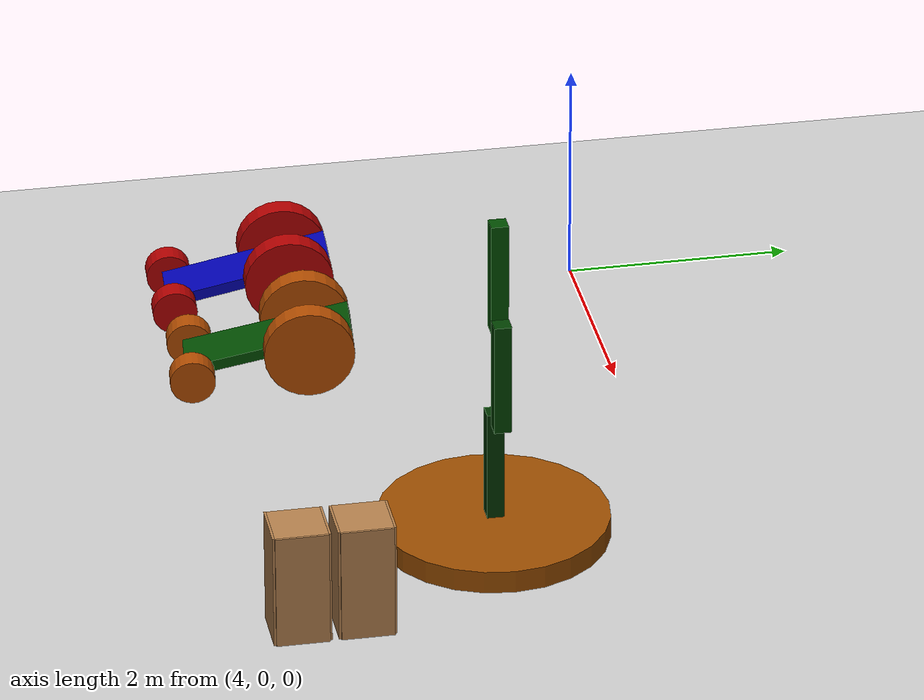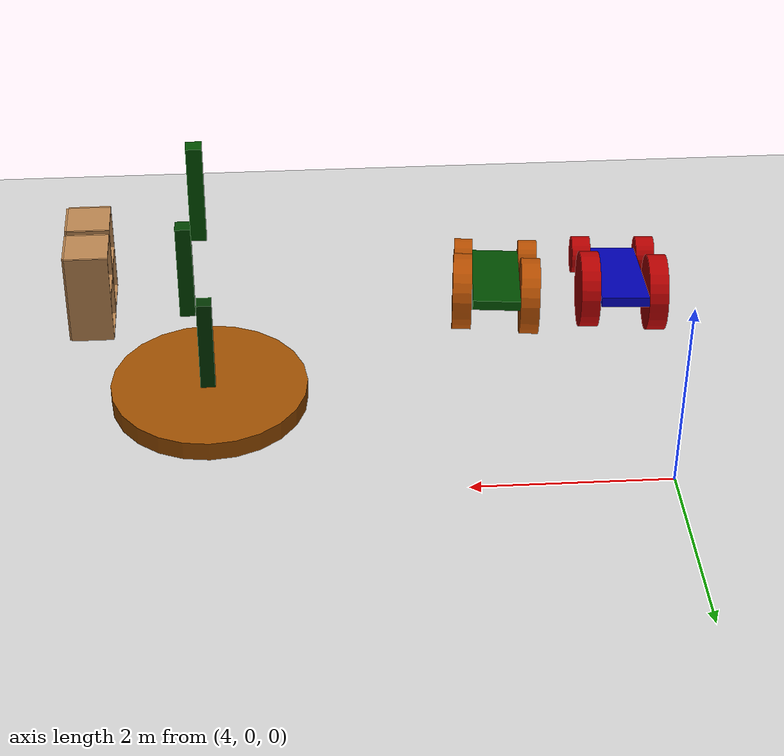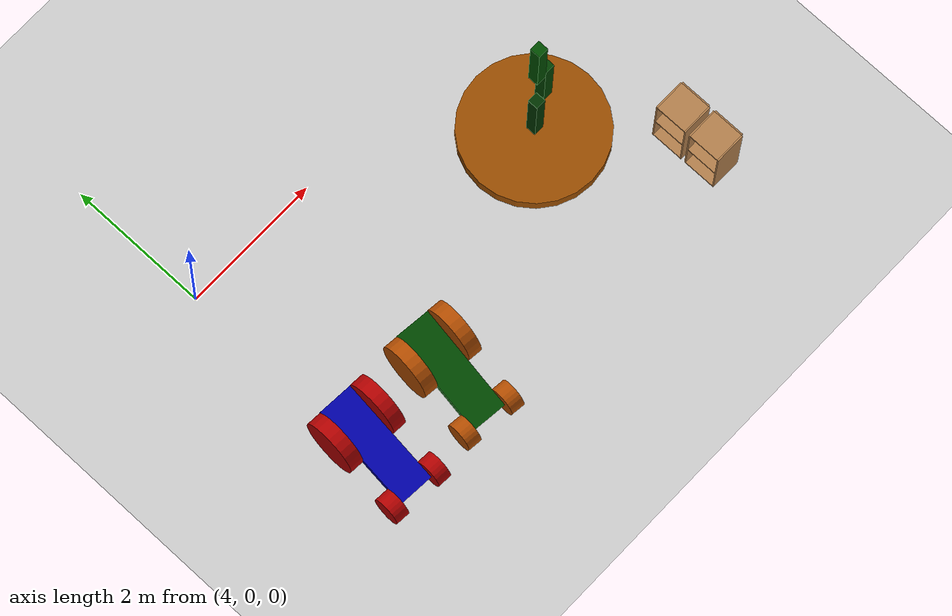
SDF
<sdf version="1.6">
 <world name="default">
  <model name="ground_plane">
   <static>1</static>
   <link name="link">
    <collision name="collision">
     <geometry><plane><normal>0 0 1</normal><size>100 100</size></plane></geometry>
     <surface><friction><ode><mu>100</mu><mu2>50</mu2></ode></friction></surface>
    </collision>
    <visual name="visual">
     <cast_shadows>0</cast_shadows>
     <geometry><plane><normal>0 0 1</normal><size>100 100</size></plane></geometry>
     <material>
      <script><uri>file://media/materials/scripts/gazebo.material</uri><name>Gazebo/Grey</name></script>
     </material>
    </visual>
   </link>
  </model>
  <model name="cabinet">
   <static>1</static>
   <link name="cabinet_bottom_plate">
    <inertial>
     <pose>0 0 -1 0 -0 0</pose>
     <inertia><ixx>2.05</ixx><ixy>0</ixy><ixz>0</ixz><iyy>2.05</iyy><iyz>0</iyz><izz>2.05</izz></inertia>
     <mass>25</mass>
    </inertial>
    <collision name="cabinet_bottom_plate_geom">
     <pose>0 0 0.01 0 -0 0</pose>
     <geometry><box><size>0.45 0.45 0.02</size></box></geometry>
    </collision>
    <visual name="cabinet_bottom_plate_geom_visual">
     <pose>0 0 0.01 0 -0 0</pose>
     <geometry><box><size>0.45 0.45 0.02</size></box></geometry>
     <material>
      <script><uri>file://media/materials/scripts/gazebo.material</uri><name>Gazebo/Wood</name></script>
     </material>
    </visual>
    <collision name="cabinet_bottom_plate_geom_cabinet_back_plate">
     <pose>0.235 0 0.51 0 -0 0</pose>
     <geometry><box><size>0.02 0.45 1.02</size></box></geometry>
    </collision>
    <visual name="cabinet_bottom_plate_geom_cabinet_back_plate_visual">
     <pose>0.235 0 0.51 0 -0 0</pose>
     <geometry><box><size>0.02 0.45 1.02</size></box></geometry>
     <material>
      <script><uri>file://media/materials/scripts/gazebo.material</uri><name>Gazebo/Wood</name></script>
     </material>
    </visual>
    <collision name="cabinet_bottom_plate_geom_cabinet_left_plate">
     <pose>0 0.235 0.51 0 -0 0</pose>
     <geometry><box><size>0.45 0.02 1.02</size></box></geometry>
    </collision>
    <visual name="cabinet_bottom_plate_geom_cabinet_left_plate_visual">
     <pose>0 0.235 0.51 0 -0 0</pose>
     <geometry><box><size>0.45 0.02 1.02</size></box></geometry>
     <material>
      <script><uri>file://media/materials/scripts/gazebo.material</uri><name>Gazebo/Wood</name></script>
     </material>
    </visual>
    <collision name="cabinet_bottom_plate_geom_cabinet_middle_plate">
     <pose>0 0 0.51 0 -0 0</pose>
     <geometry><box><size>0.45 0.45 0.02</size></box></geometry>
    </collision>
    <visual name="cabinet_bottom_plate_geom_cabinet_middle_plate_visual">
     <pose>0 0 0.51 0 -0 0</pose>
     <geometry><box><size>0.45 0.45 0.02</size></box></geometry>
     <material>
      <script><uri>file://media/materials/scripts/gazebo.material</uri><name>Gazebo/Wood</name></script>
     </material>
    </visual>
    <collision name="cabinet_bottom_plate_geom_cabinet_right_plate">
     <pose>0 -0.235 0.51 0 -0 0</pose>
     <geometry><box><size>0.45 0.02 1.02</size></box></geometry>
    </collision>
    <visual name="cabinet_bottom_plate_geom_cabinet_right_plate_visual">
     <pose>0 -0.235 0.51 0 -0 0</pose>
     <geometry><box><size>0.45 0.02 1.02</size></box></geometry>
     <material>
      <script><uri>file://media/materials/scripts/gazebo.material</uri><name>Gazebo/Wood</name></script>
     </material>
    </visual>
    <collision name="cabinet_bottom_plate_geom_cabinet_top_plate">
     <pose>0 0 1.01 0 -0 0</pose>
     <geometry><box><size>0.45 0.45 0.02</size></box></geometry>
    </collision>
    <visual name="cabinet_bottom_plate_geom_cabinet_top_plate_visual">
     <pose>0 0 1.01 0 -0 0</pose>
     <geometry><box><size>0.45 0.45 0.02</size></box></geometry>
     <material>
      <script><uri>file://media/materials/scripts/gazebo.material</uri><name>Gazebo/Wood</name></script>
     </material>
    </visual>
   </link>
   <pose>9.73583 -3.45752 0 0 -0 0</pose>
  </model>
  <model name="cabinet_0">
   <static>1</static>
   <link name="cabinet_bottom_plate">
    <inertial>
     <pose>0 0 -1 0 -0 0</pose>
     <inertia><ixx>2.05</ixx><ixy>0</ixy><ixz>0</ixz><iyy>2.05</iyy><iyz>0</iyz><izz>2.05</izz></inertia>
     <mass>25</mass>
    </inertial>
    <collision name="cabinet_bottom_plate_geom">
     <pose>0 0 0.01 0 -0 0</pose>
     <geometry><box><size>0.45 0.45 0.02</size></box></geometry>
    </collision>
    <visual name="cabinet_bottom_plate_geom_visual">
     <pose>0 0 0.01 0 -0 0</pose>
     <geometry><box><size>0.45 0.45 0.02</size></box></geometry>
     <material>
      <script><uri>file://media/materials/scripts/gazebo.material</uri><name>Gazebo/Wood</name></script>
     </material>
    </visual>
    <collision name="cabinet_bottom_plate_geom_cabinet_back_plate">
     <pose>0.235 0 0.51 0 -0 0</pose>
     <geometry><box><size>0.02 0.45 1.02</size></box></geometry>
    </collision>
    <visual name="cabinet_bottom_plate_geom_cabinet_back_plate_visual">
     <pose>0.235 0 0.51 0 -0 0</pose>
     <geometry><box><size>0.02 0.45 1.02</size></box></geometry>
     <material>
      <script><uri>file://media/materials/scripts/gazebo.material</uri><name>Gazebo/Wood</name></script>
     </material>
    </visual>
    <collision name="cabinet_bottom_plate_geom_cabinet_left_plate">
     <pose>0 0.235 0.51 0 -0 0</pose>
     <geometry><box><size>0.45 0.02 1.02</size></box></geometry>
    </collision>
    <visual name="cabinet_bottom_plate_geom_cabinet_left_plate_visual">
     <pose>0 0.235 0.51 0 -0 0</pose>
     <geometry><box><size>0.45 0.02 1.02</size></box></geometry>
     <material>
      <script><uri>file://media/materials/scripts/gazebo.material</uri><name>Gazebo/Wood</name></script>
     </material>
    </visual>
    <collision name="cabinet_bottom_plate_geom_cabinet_middle_plate">
     <pose>0 0 0.51 0 -0 0</pose>
     <geometry><box><size>0.45 0.45 0.02</size></box></geometry>
    </collision>
    <visual name="cabinet_bottom_plate_geom_cabinet_middle_plate_visual">
     <pose>0 0 0.51 0 -0 0</pose>
     <geometry><box><size>0.45 0.45 0.02</size></box></geometry>
     <material>
      <script><uri>file://media/materials/scripts/gazebo.material</uri><name>Gazebo/Wood</name></script>
     </material>
    </visual>
    <collision name="cabinet_bottom_plate_geom_cabinet_right_plate">
     <pose>0 -0.235 0.51 0 -0 0</pose>
     <geometry><box><size>0.45 0.02 1.02</size></box></geometry>
    </collision>
    <visual name="cabinet_bottom_plate_geom_cabinet_right_plate_visual">
     <pose>0 -0.235 0.51 0 -0 0</pose>
     <geometry><box><size>0.45 0.02 1.02</size></box></geometry>
     <material>
      <script><uri>file://media/materials/scripts/gazebo.material</uri><name>Gazebo/Wood</name></script>
     </material>
    </visual>
    <collision name="cabinet_bottom_plate_geom_cabinet_top_plate">
     <pose>0 0 1.01 0 -0 0</pose>
     <geometry><box><size>0.45 0.45 0.02</size></box></geometry>
    </collision>
    <visual name="cabinet_bottom_plate_geom_cabinet_top_plate_visual">
     <pose>0 0 1.01 0 -0 0</pose>
     <geometry><box><size>0.45 0.45 0.02</size></box></geometry>
     <material>
      <script><uri>file://media/materials/scripts/gazebo.material</uri><name>Gazebo/Wood</name></script>
     </material>
    </visual>
   </link>
   <pose>9.73326 -2.91173 0 0 -0 0</pose>
  </model>
  <model name="Robot4Wheeled">
   <link name="link_0">
    <pose>-0.002429 0.133872 0.042604 0.207139 -0 0</pose>
    <inertial>
     <mass>1</mass>
     <inertia>
      <ixx>0.166667</ixx>
      <ixy>0</ixy>
      <ixz>0</ixz>
      <iyy>0.166667</iyy>
      <iyz>0</iyz>
      <izz>0.166667</izz>
     </inertia>
     <pose>0 0 0.2 0 -0 0</pose>
    </inertial>
    <visual name="visual">
     <geometry><box><size>0.5 1.5 0.1</size></box></geometry>
     <material>
      <lighting>1</lighting>
      <script><uri>file://media/materials/scripts/gazebo.material</uri><name>Gazebo/Grey</name></script>
      <shader type="pixel"><normal_map>__default__</normal_map></shader>
      <ambient>0 0.3 0 1</ambient>
      <diffuse>0 0.3 0 1</diffuse>
      <specular>0 0.3 0 1</specular>
      <emissive>0 0 0 1</emissive>
     </material>
    </visual>
    <collision name="collision">
     <geometry><box><size>0.5 1.5 0.1</size></box></geometry>
     <surface>
      <friction>
       <ode><mu>1</mu><mu2>1</mu2><fdir1>0 0 0</fdir1><slip1>0</slip1><slip2>0</slip2></ode>
       <torsional>
        <coefficient>1</coefficient>
        <patch_radius>0</patch_radius>
        <surface_radius>0</surface_radius>
        <use_patch_radius>1</use_patch_radius>
        <ode><slip>0</slip></ode>
       </torsional>
      </friction>
      <bounce><restitution_coefficient>0</restitution_coefficient><threshold>1e+06</threshold></bounce>
      <contact>
       <collide_without_contact>0</collide_without_contact>
       <collide_without_contact_bitmask>1</collide_without_contact_bitmask>
       <collide_bitmask>1</collide_bitmask>
       <ode>
        <soft_cfm>0</soft_cfm>
        <soft_erp>0.2</soft_erp>
        <kp>1e+13</kp>
        <kd>1</kd>
        <max_vel>0.01</max_vel>
        <min_depth>0</min_depth>
       </ode>
       <bullet>
        <split_impulse>1</split_impulse>
        <split_impulse_penetration_threshold>-0.01</split_impulse_penetration_threshold>
        <soft_cfm>0</soft_cfm>
        <soft_erp>0.2</soft_erp>
        <kp>1e+13</kp>
        <kd>1</kd>
       </bullet>
      </contact>
     </surface>
    </collision>
   </link>
   <link name="link_1">
    <pose>0.359793 0.482164 0.112386 1.5707 0 1.5707</pose>
    <inertial>
     <mass>1</mass>
     <inertia><ixx>0.145833</ixx><ixy>0</ixy><ixz>0</ixz><iyy>0.145833</iyy><iyz>0</iyz><izz>0.125</izz></inertia>
    </inertial>
    <visual name="visual">
     <geometry><cylinder><radius>0.4</radius><length>0.2</length></cylinder></geometry>
     <material>
      <lighting>1</lighting>
      <script><uri>file://media/materials/scripts/gazebo.material</uri><name>Gazebo/Grey</name></script>
      <shader type="pixel"><normal_map>__default__</normal_map></shader>
      <ambient>0.7 0.3 0 1</ambient>
      <diffuse>0.7 0.3 0 1</diffuse>
      <specular>0.7 0.3 0 1</specular>
      <emissive>0 0 0 1</emissive>
     </material>
    </visual>
    <collision name="collision">
     <geometry><cylinder><radius>0.4</radius><length>0.2</length></cylinder></geometry>
     <surface>
      <friction>
       <ode><mu>1</mu><mu2>1</mu2><fdir1>0 0 0</fdir1><slip1>0</slip1><slip2>0</slip2></ode>
       <torsional>
        <coefficient>1</coefficient>
        <patch_radius>0</patch_radius>
        <surface_radius>0</surface_radius>
        <use_patch_radius>1</use_patch_radius>
        <ode><slip>0</slip></ode>
       </torsional>
      </friction>
      <bounce><restitution_coefficient>0</restitution_coefficient><threshold>1e+06</threshold></bounce>
      <contact>
       <collide_without_contact>0</collide_without_contact>
       <collide_without_contact_bitmask>1</collide_without_contact_bitmask>
       <collide_bitmask>1</collide_bitmask>
       <ode>
        <soft_cfm>0</soft_cfm>
        <soft_erp>0.2</soft_erp>
        <kp>1e+13</kp>
        <kd>1</kd>
        <max_vel>0.01</max_vel>
        <min_depth>0</min_depth>
       </ode>
       <bullet>
        <split_impulse>1</split_impulse>
        <split_impulse_penetration_threshold>-0.01</split_impulse_penetration_threshold>
        <soft_cfm>0</soft_cfm>
        <soft_erp>0.2</soft_erp>
        <kp>1e+13</kp>
        <kd>1</kd>
       </bullet>
      </contact>
     </surface>
    </collision>
   </link>
   <link name="link_1_clone">
    <pose>-0.352506 0.480792 0.073897 1.5707 0 1.5707</pose>
    <inertial>
     <mass>1</mass>
     <inertia><ixx>0.145833</ixx><ixy>0</ixy><ixz>0</ixz><iyy>0.145833</iyy><iyz>0</iyz><izz>0.125</izz></inertia>
    </inertial>
    <visual name="visual">
     <geometry><cylinder><radius>0.4</radius><length>0.2</length></cylinder></geometry>
     <material>
      <lighting>1</lighting>
      <script><uri>file://media/materials/scripts/gazebo.material</uri><name>Gazebo/Grey</name></script>
      <shader type="pixel"><normal_map>__default__</normal_map></shader>
      <ambient>0.7 0.3 0 1</ambient>
      <diffuse>0.7 0.3 0 1</diffuse>
      <specular>0.7 0.3 0 1</specular>
      <emissive>0 0 0 1</emissive>
     </material>
    </visual>
    <collision name="collision">
     <geometry><cylinder><radius>0.4</radius><length>0.2</length></cylinder></geometry>
     <surface>
      <friction>
       <ode><mu>1</mu><mu2>1</mu2><fdir1>0 0 0</fdir1><slip1>0</slip1><slip2>0</slip2></ode>
       <torsional>
        <coefficient>1</coefficient>
        <patch_radius>0</patch_radius>
        <surface_radius>0</surface_radius>
        <use_patch_radius>1</use_patch_radius>
        <ode><slip>0</slip></ode>
       </torsional>
      </friction>
      <bounce><restitution_coefficient>0</restitution_coefficient><threshold>1e+06</threshold></bounce>
      <contact>
       <collide_without_contact>0</collide_without_contact>
       <collide_without_contact_bitmask>1</collide_without_contact_bitmask>
       <collide_bitmask>1</collide_bitmask>
       <ode>
        <soft_cfm>0</soft_cfm>
        <soft_erp>0.2</soft_erp>
        <kp>1e+13</kp>
        <kd>1</kd>
        <max_vel>0.01</max_vel>
        <min_depth>0</min_depth>
       </ode>
       <bullet>
        <split_impulse>1</split_impulse>
        <split_impulse_penetration_threshold>-0.01</split_impulse_penetration_threshold>
        <soft_cfm>0</soft_cfm>
        <soft_erp>0.2</soft_erp>
        <kp>1e+13</kp>
        <kd>1</kd>
       </bullet>
      </contact>
     </surface>
    </collision>
   </link>
   <link name="link_1_clone_0">
    <pose>0.34761 -0.548486 -0.114104 1.5707 0 1.5707</pose>
    <inertial>
     <mass>1</mass>
     <inertia><ixx>0.145833</ixx><ixy>0</ixy><ixz>0</ixz><iyy>0.145833</iyy><iyz>0</iyz><izz>0.125</izz></inertia>
    </inertial>
    <visual name="visual">
     <geometry><cylinder><radius>0.2</radius><length>0.2</length></cylinder></geometry>
     <material>
      <lighting>1</lighting>
      <script><uri>file://media/materials/scripts/gazebo.material</uri><name>Gazebo/Grey</name></script>
      <shader type="pixel"><normal_map>__default__</normal_map></shader>
      <ambient>0.7 0.3 0 1</ambient>
      <diffuse>0.7 0.3 0 1</diffuse>
      <specular>0.7 0.3 0 1</specular>
      <emissive>0 0 0 1</emissive>
     </material>
    </visual>
    <collision name="collision">
     <geometry><cylinder><radius>0.2</radius><length>0.2</length></cylinder></geometry>
     <surface>
      <friction>
       <ode><mu>1</mu><mu2>1</mu2><fdir1>0 0 0</fdir1><slip1>0</slip1><slip2>0</slip2></ode>
       <torsional>
        <coefficient>1</coefficient>
        <patch_radius>0</patch_radius>
        <surface_radius>0</surface_radius>
        <use_patch_radius>1</use_patch_radius>
        <ode><slip>0</slip></ode>
       </torsional>
      </friction>
      <bounce><restitution_coefficient>0</restitution_coefficient><threshold>1e+06</threshold></bounce>
      <contact>
       <collide_without_contact>0</collide_without_contact>
       <collide_without_contact_bitmask>1</collide_without_contact_bitmask>
       <collide_bitmask>1</collide_bitmask>
       <ode>
        <soft_cfm>0</soft_cfm>
        <soft_erp>0.2</soft_erp>
        <kp>1e+13</kp>
        <kd>1</kd>
        <max_vel>0.01</max_vel>
        <min_depth>0</min_depth>
       </ode>
       <bullet>
        <split_impulse>1</split_impulse>
        <split_impulse_penetration_threshold>-0.01</split_impulse_penetration_threshold>
        <soft_cfm>0</soft_cfm>
        <soft_erp>0.2</soft_erp>
        <kp>1e+13</kp>
        <kd>1</kd>
       </bullet>
      </contact>
     </surface>
    </collision>
   </link>
   <link name="link_1_clone_0_clone">
    <pose>-0.352468 -0.548485 -0.114104 1.5707 0 1.5707</pose>
    <inertial>
     <mass>1</mass>
     <inertia><ixx>0.145833</ixx><ixy>0</ixy><ixz>0</ixz><iyy>0.145833</iyy><iyz>0</iyz><izz>0.125</izz></inertia>
    </inertial>
    <visual name="visual">
     <geometry><cylinder><radius>0.2</radius><length>0.2</length></cylinder></geometry>
     <material>
      <lighting>1</lighting>
      <script><uri>file://media/materials/scripts/gazebo.material</uri><name>Gazebo/Grey</name></script>
      <shader type="pixel"><normal_map>__default__</normal_map></shader>
      <ambient>0.7 0.3 0 1</ambient>
      <diffuse>0.7 0.3 0 1</diffuse>
      <specular>0.7 0.3 0 1</specular>
      <emissive>0 0 0 1</emissive>
     </material>
    </visual>
    <collision name="collision">
     <geometry><cylinder><radius>0.2</radius><length>0.2</length></cylinder></geometry>
     <surface>
      <friction>
       <ode><mu>1</mu><mu2>1</mu2><fdir1>0 0 0</fdir1><slip1>0</slip1><slip2>0</slip2></ode>
       <torsional>
        <coefficient>1</coefficient>
        <patch_radius>0</patch_radius>
        <surface_radius>0</surface_radius>
        <use_patch_radius>1</use_patch_radius>
        <ode><slip>0</slip></ode>
       </torsional>
      </friction>
      <bounce><restitution_coefficient>0</restitution_coefficient><threshold>1e+06</threshold></bounce>
      <contact>
       <collide_without_contact>0</collide_without_contact>
       <collide_without_contact_bitmask>1</collide_without_contact_bitmask>
       <collide_bitmask>1</collide_bitmask>
       <ode>
        <soft_cfm>0</soft_cfm>
        <soft_erp>0.2</soft_erp>
        <kp>1e+13</kp>
        <kd>1</kd>
        <max_vel>0.01</max_vel>
        <min_depth>0</min_depth>
       </ode>
       <bullet>
        <split_impulse>1</split_impulse>
        <split_impulse_penetration_threshold>-0.01</split_impulse_penetration_threshold>
        <soft_cfm>0</soft_cfm>
        <soft_erp>0.2</soft_erp>
        <kp>1e+13</kp>
        <kd>1</kd>
       </bullet>
      </contact>
     </surface>
    </collision>
   </link>
   <joint name="link_0_JOINT_0" type="revolute">
    <parent>link_0</parent>
    <child>link_1_clone</child>
    <axis>
     <xyz>0 0 1</xyz>
     <use_parent_model_frame>0</use_parent_model_frame>
     <limit>
      <lower>-1.79769e+308</lower>
      <upper>1.79769e+308</upper>
      <effort>-1</effort>
      <velocity>-1</velocity>
     </limit>
     <dynamics>
      <spring_reference>0</spring_reference>
      <spring_stiffness>0</spring_stiffness>
      <damping>0</damping>
      <friction>0</friction>
     </dynamics>
    </axis>
    <physics>
     <ode><limit><cfm>0</cfm><erp>0.2</erp></limit><suspension><cfm>0</cfm><erp>0.2</erp></suspension></ode>
    </physics>
   </joint>
   <joint name="link_0_JOINT_1" type="revolute">
    <parent>link_0</parent>
    <child>link_1</child>
    <axis>
     <xyz>0 0 1</xyz>
     <use_parent_model_frame>0</use_parent_model_frame>
     <limit>
      <lower>-1.79769e+308</lower>
      <upper>1.79769e+308</upper>
      <effort>-1</effort>
      <velocity>-1</velocity>
     </limit>
     <dynamics>
      <spring_reference>0</spring_reference>
      <spring_stiffness>0</spring_stiffness>
      <damping>0</damping>
      <friction>0</friction>
     </dynamics>
    </axis>
    <physics>
     <ode><limit><cfm>0</cfm><erp>0.2</erp></limit><suspension><cfm>0</cfm><erp>0.2</erp></suspension></ode>
    </physics>
   </joint>
   <joint name="link_0_JOINT_2" type="revolute">
    <parent>link_0</parent>
    <child>link_1_clone_0_clone</child>
    <axis>
     <xyz>0 0 1</xyz>
     <use_parent_model_frame>0</use_parent_model_frame>
     <limit>
      <lower>-1.79769e+308</lower>
      <upper>1.79769e+308</upper>
      <effort>-1</effort>
      <velocity>-1</velocity>
     </limit>
     <dynamics>
      <spring_reference>0</spring_reference>
      <spring_stiffness>0</spring_stiffness>
      <damping>0</damping>
      <friction>0</friction>
     </dynamics>
    </axis>
    <physics>
     <ode><limit><cfm>0</cfm><erp>0.2</erp></limit><suspension><cfm>0</cfm><erp>0.2</erp></suspension></ode>
    </physics>
   </joint>
   <joint name="link_0_JOINT_3" type="revolute">
    <parent>link_0</parent>
    <child>link_1_clone_0</child>
    <axis>
     <xyz>0 0 1</xyz>
     <use_parent_model_frame>0</use_parent_model_frame>
     <limit>
      <lower>-1.79769e+308</lower>
      <upper>1.79769e+308</upper>
      <effort>-1</effort>
      <velocity>-1</velocity>
     </limit>
     <dynamics>
      <spring_reference>0</spring_reference>
      <spring_stiffness>0</spring_stiffness>
      <damping>0</damping>
      <friction>0</friction>
     </dynamics>
    </axis>
    <physics>
     <ode><limit><cfm>0</cfm><erp>0.2</erp></limit><suspension><cfm>0</cfm><erp>0.2</erp></suspension></ode>
    </physics>
   </joint>
   <static>0</static>
   <pose>5.40383 -3.14733 0.320494 0.011603 9.6e-05 -0.106567</pose>
  </model>
  <model name="Robot4Wheels">
   <link name="link_0">
    <pose>-0.002429 0.133872 0.042604 0.207139 -0 0</pose>
    <inertial>
     <mass>1</mass>
     <inertia>
      <ixx>0.166667</ixx>
      <ixy>0</ixy>
      <ixz>0</ixz>
      <iyy>0.166667</iyy>
      <iyz>0</iyz>
      <izz>0.166667</izz>
     </inertia>
     <pose>0 0 0.2 0 -0 0</pose>
    </inertial>
    <visual name="visual">
     <geometry><box><size>0.5 1.5 0.1</size></box></geometry>
     <material>
      <lighting>1</lighting>
      <script><uri>file://media/materials/scripts/gazebo.material</uri><name>Gazebo/Grey</name></script>
      <shader type="pixel"><normal_map>__default__</normal_map></shader>
      <ambient>0 0 0.7 1</ambient>
      <diffuse>0 0 0.7 1</diffuse>
      <specular>0 0 0.7 1</specular>
      <emissive>0 0 0 1</emissive>
     </material>
    </visual>
    <collision name="collision">
     <geometry><box><size>0.5 1.5 0.1</size></box></geometry>
     <surface>
      <friction>
       <ode><mu>1</mu><mu2>1</mu2><fdir1>0 0 0</fdir1><slip1>0</slip1><slip2>0</slip2></ode>
       <torsional>
        <coefficient>1</coefficient>
        <patch_radius>0</patch_radius>
        <surface_radius>0</surface_radius>
        <use_patch_radius>1</use_patch_radius>
        <ode><slip>0</slip></ode>
       </torsional>
      </friction>
      <bounce><restitution_coefficient>0</restitution_coefficient><threshold>1e+06</threshold></bounce>
      <contact>
       <collide_without_contact>0</collide_without_contact>
       <collide_without_contact_bitmask>1</collide_without_contact_bitmask>
       <collide_bitmask>1</collide_bitmask>
       <ode>
        <soft_cfm>0</soft_cfm>
        <soft_erp>0.2</soft_erp>
        <kp>1e+13</kp>
        <kd>1</kd>
        <max_vel>0.01</max_vel>
        <min_depth>0</min_depth>
       </ode>
       <bullet>
        <split_impulse>1</split_impulse>
        <split_impulse_penetration_threshold>-0.01</split_impulse_penetration_threshold>
        <soft_cfm>0</soft_cfm>
        <soft_erp>0.2</soft_erp>
        <kp>1e+13</kp>
        <kd>1</kd>
       </bullet>
      </contact>
     </surface>
    </collision>
   </link>
   <link name="link_1">
    <pose>0.359793 0.482164 0.112386 1.5707 0 1.5707</pose>
    <inertial>
     <mass>1</mass>
     <inertia><ixx>0.145833</ixx><ixy>0</ixy><ixz>0</ixz><iyy>0.145833</iyy><iyz>0</iyz><izz>0.125</izz></inertia>
    </inertial>
    <visual name="visual">
     <geometry><cylinder><radius>0.4</radius><length>0.2</length></cylinder></geometry>
     <material>
      <lighting>1</lighting>
      <script><uri>file://media/materials/scripts/gazebo.material</uri><name>Gazebo/Grey</name></script>
      <shader type="pixel"><normal_map>__default__</normal_map></shader>
      <ambient>0.7 0 0 1</ambient>
      <diffuse>0.7 0 0 1</diffuse>
      <specular>0.7 0 0 1</specular>
      <emissive>0 0 0 1</emissive>
     </material>
    </visual>
    <collision name="collision">
     <geometry><cylinder><radius>0.4</radius><length>0.2</length></cylinder></geometry>
     <surface>
      <friction>
       <ode><mu>1</mu><mu2>1</mu2><fdir1>0 0 0</fdir1><slip1>0</slip1><slip2>0</slip2></ode>
       <torsional>
        <coefficient>1</coefficient>
        <patch_radius>0</patch_radius>
        <surface_radius>0</surface_radius>
        <use_patch_radius>1</use_patch_radius>
        <ode><slip>0</slip></ode>
       </torsional>
      </friction>
      <bounce><restitution_coefficient>0</restitution_coefficient><threshold>1e+06</threshold></bounce>
      <contact>
       <collide_without_contact>0</collide_without_contact>
       <collide_without_contact_bitmask>1</collide_without_contact_bitmask>
       <collide_bitmask>1</collide_bitmask>
       <ode>
        <soft_cfm>0</soft_cfm>
        <soft_erp>0.2</soft_erp>
        <kp>1e+13</kp>
        <kd>1</kd>
        <max_vel>0.01</max_vel>
        <min_depth>0</min_depth>
       </ode>
       <bullet>
        <split_impulse>1</split_impulse>
        <split_impulse_penetration_threshold>-0.01</split_impulse_penetration_threshold>
        <soft_cfm>0</soft_cfm>
        <soft_erp>0.2</soft_erp>
        <kp>1e+13</kp>
        <kd>1</kd>
       </bullet>
      </contact>
     </surface>
    </collision>
   </link>
   <link name="link_1_clone">
    <pose>-0.352506 0.480792 0.073897 1.5707 0 1.5707</pose>
    <inertial>
     <mass>1</mass>
     <inertia><ixx>0.145833</ixx><ixy>0</ixy><ixz>0</ixz><iyy>0.145833</iyy><iyz>0</iyz><izz>0.125</izz></inertia>
    </inertial>
    <visual name="visual">
     <geometry><cylinder><radius>0.4</radius><length>0.2</length></cylinder></geometry>
     <material>
      <lighting>1</lighting>
      <script><uri>file://media/materials/scripts/gazebo.material</uri><name>Gazebo/Grey</name></script>
      <shader type="pixel"><normal_map>__default__</normal_map></shader>
      <ambient>0.7 0 0 1</ambient>
      <diffuse>0.7 0 0 1</diffuse>
      <specular>0.7 0 0 1</specular>
      <emissive>0 0 0 1</emissive>
     </material>
    </visual>
    <collision name="collision">
     <geometry><cylinder><radius>0.4</radius><length>0.2</length></cylinder></geometry>
     <surface>
      <friction>
       <ode><mu>1</mu><mu2>1</mu2><fdir1>0 0 0</fdir1><slip1>0</slip1><slip2>0</slip2></ode>
       <torsional>
        <coefficient>1</coefficient>
        <patch_radius>0</patch_radius>
        <surface_radius>0</surface_radius>
        <use_patch_radius>1</use_patch_radius>
        <ode><slip>0</slip></ode>
       </torsional>
      </friction>
      <bounce><restitution_coefficient>0</restitution_coefficient><threshold>1e+06</threshold></bounce>
      <contact>
       <collide_without_contact>0</collide_without_contact>
       <collide_without_contact_bitmask>1</collide_without_contact_bitmask>
       <collide_bitmask>1</collide_bitmask>
       <ode>
        <soft_cfm>0</soft_cfm>
        <soft_erp>0.2</soft_erp>
        <kp>1e+13</kp>
        <kd>1</kd>
        <max_vel>0.01</max_vel>
        <min_depth>0</min_depth>
       </ode>
       <bullet>
        <split_impulse>1</split_impulse>
        <split_impulse_penetration_threshold>-0.01</split_impulse_penetration_threshold>
        <soft_cfm>0</soft_cfm>
        <soft_erp>0.2</soft_erp>
        <kp>1e+13</kp>
        <kd>1</kd>
       </bullet>
      </contact>
     </surface>
    </collision>
   </link>
   <link name="link_1_clone_0">
    <pose>0.34761 -0.548486 -0.114104 1.5707 0 1.5707</pose>
    <inertial>
     <mass>1</mass>
     <inertia><ixx>0.145833</ixx><ixy>0</ixy><ixz>0</ixz><iyy>0.145833</iyy><iyz>0</iyz><izz>0.125</izz></inertia>
    </inertial>
    <visual name="visual">
     <geometry><cylinder><radius>0.2</radius><length>0.2</length></cylinder></geometry>
     <material>
      <lighting>1</lighting>
      <script><uri>file://media/materials/scripts/gazebo.material</uri><name>Gazebo/Grey</name></script>
      <shader type="pixel"><normal_map>__default__</normal_map></shader>
      <ambient>0.7 0 0 1</ambient>
      <diffuse>0.7 0 0 1</diffuse>
      <specular>0.7 0 0 1</specular>
      <emissive>0 0 0 1</emissive>
     </material>
    </visual>
    <collision name="collision">
     <geometry><cylinder><radius>0.2</radius><length>0.2</length></cylinder></geometry>
     <surface>
      <friction>
       <ode><mu>1</mu><mu2>1</mu2><fdir1>0 0 0</fdir1><slip1>0</slip1><slip2>0</slip2></ode>
       <torsional>
        <coefficient>1</coefficient>
        <patch_radius>0</patch_radius>
        <surface_radius>0</surface_radius>
        <use_patch_radius>1</use_patch_radius>
        <ode><slip>0</slip></ode>
       </torsional>
      </friction>
      <bounce><restitution_coefficient>0</restitution_coefficient><threshold>1e+06</threshold></bounce>
      <contact>
       <collide_without_contact>0</collide_without_contact>
       <collide_without_contact_bitmask>1</collide_without_contact_bitmask>
       <collide_bitmask>1</collide_bitmask>
       <ode>
        <soft_cfm>0</soft_cfm>
        <soft_erp>0.2</soft_erp>
        <kp>1e+13</kp>
        <kd>1</kd>
        <max_vel>0.01</max_vel>
        <min_depth>0</min_depth>
       </ode>
       <bullet>
        <split_impulse>1</split_impulse>
        <split_impulse_penetration_threshold>-0.01</split_impulse_penetration_threshold>
        <soft_cfm>0</soft_cfm>
        <soft_erp>0.2</soft_erp>
        <kp>1e+13</kp>
        <kd>1</kd>
       </bullet>
      </contact>
     </surface>
    </collision>
   </link>
   <link name="link_1_clone_0_clone">
    <pose>-0.352468 -0.548485 -0.114104 1.5707 0 1.5707</pose>
    <inertial>
     <mass>1</mass>
     <inertia><ixx>0.145833</ixx><ixy>0</ixy><ixz>0</ixz><iyy>0.145833</iyy><iyz>0</iyz><izz>0.125</izz></inertia>
    </inertial>
    <visual name="visual">
     <geometry><cylinder><radius>0.2</radius><length>0.2</length></cylinder></geometry>
     <material>
      <lighting>1</lighting>
      <script><uri>file://media/materials/scripts/gazebo.material</uri><name>Gazebo/Grey</name></script>
      <shader type="pixel"><normal_map>__default__</normal_map></shader>
      <ambient>0.7 0 0 1</ambient>
      <diffuse>0.7 0 0 1</diffuse>
      <specular>0.7 0 0 1</specular>
      <emissive>0 0 0 1</emissive>
     </material>
    </visual>
    <collision name="collision">
     <geometry><cylinder><radius>0.2</radius><length>0.2</length></cylinder></geometry>
     <surface>
      <friction>
       <ode><mu>1</mu><mu2>1</mu2><fdir1>0 0 0</fdir1><slip1>0</slip1><slip2>0</slip2></ode>
       <torsional>
        <coefficient>1</coefficient>
        <patch_radius>0</patch_radius>
        <surface_radius>0</surface_radius>
        <use_patch_radius>1</use_patch_radius>
        <ode><slip>0</slip></ode>
       </torsional>
      </friction>
      <bounce><restitution_coefficient>0</restitution_coefficient><threshold>1e+06</threshold></bounce>
      <contact>
       <collide_without_contact>0</collide_without_contact>
       <collide_without_contact_bitmask>1</collide_without_contact_bitmask>
       <collide_bitmask>1</collide_bitmask>
       <ode>
        <soft_cfm>0</soft_cfm>
        <soft_erp>0.2</soft_erp>
        <kp>1e+13</kp>
        <kd>1</kd>
        <max_vel>0.01</max_vel>
        <min_depth>0</min_depth>
       </ode>
       <bullet>
        <split_impulse>1</split_impulse>
        <split_impulse_penetration_threshold>-0.01</split_impulse_penetration_threshold>
        <soft_cfm>0</soft_cfm>
        <soft_erp>0.2</soft_erp>
        <kp>1e+13</kp>
        <kd>1</kd>
       </bullet>
      </contact>
     </surface>
    </collision>
   </link>
   <joint name="link_0_JOINT_0" type="revolute">
    <parent>link_0</parent>
    <child>link_1_clone</child>
    <axis>
     <xyz>0 0 1</xyz>
     <use_parent_model_frame>0</use_parent_model_frame>
     <limit>
      <lower>-1.79769e+308</lower>
      <upper>1.79769e+308</upper>
      <effort>-1</effort>
      <velocity>-1</velocity>
     </limit>
     <dynamics>
      <spring_reference>0</spring_reference>
      <spring_stiffness>0</spring_stiffness>
      <damping>0</damping>
      <friction>0</friction>
     </dynamics>
    </axis>
    <physics>
     <ode><limit><cfm>0</cfm><erp>0.2</erp></limit><suspension><cfm>0</cfm><erp>0.2</erp></suspension></ode>
    </physics>
   </joint>
   <joint name="link_0_JOINT_1" type="revolute">
    <parent>link_0</parent>
    <child>link_1</child>
    <axis>
     <xyz>0 0 1</xyz>
     <use_parent_model_frame>0</use_parent_model_frame>
     <limit>
      <lower>-1.79769e+308</lower>
      <upper>1.79769e+308</upper>
      <effort>-1</effort>
      <velocity>-1</velocity>
     </limit>
     <dynamics>
      <spring_reference>0</spring_reference>
      <spring_stiffness>0</spring_stiffness>
      <damping>0</damping>
      <friction>0</friction>
     </dynamics>
    </axis>
    <physics>
     <ode><limit><cfm>0</cfm><erp>0.2</erp></limit><suspension><cfm>0</cfm><erp>0.2</erp></suspension></ode>
    </physics>
   </joint>
   <joint name="link_0_JOINT_2" type="revolute">
    <parent>link_0</parent>
    <child>link_1_clone_0_clone</child>
    <axis>
     <xyz>0 0 1</xyz>
     <use_parent_model_frame>0</use_parent_model_frame>
     <limit>
      <lower>-1.79769e+308</lower>
      <upper>1.79769e+308</upper>
      <effort>-1</effort>
      <velocity>-1</velocity>
     </limit>
     <dynamics>
      <spring_reference>0</spring_reference>
      <spring_stiffness>0</spring_stiffness>
      <damping>0</damping>
      <friction>0</friction>
     </dynamics>
    </axis>
    <physics>
     <ode><limit><cfm>0</cfm><erp>0.2</erp></limit><suspension><cfm>0</cfm><erp>0.2</erp></suspension></ode>
    </physics>
   </joint>
   <joint name="link_0_JOINT_3" type="revolute">
    <parent>link_0</parent>
    <child>link_1_clone_0</child>
    <axis>
     <xyz>0 0 1</xyz>
     <use_parent_model_frame>0</use_parent_model_frame>
     <limit>
      <lower>-1.79769e+308</lower>
      <upper>1.79769e+308</upper>
      <effort>-1</effort>
      <velocity>-1</velocity>
     </limit>
     <dynamics>
      <spring_reference>0</spring_reference>
      <spring_stiffness>0</spring_stiffness>
      <damping>0</damping>
      <friction>0</friction>
     </dynamics>
    </axis>
    <physics>
     <ode><limit><cfm>0</cfm><erp>0.2</erp></limit><suspension><cfm>0</cfm><erp>0.2</erp></suspension></ode>
    </physics>
   </joint>
   <static>0</static>
   <pose>4.08718 -3.12477 0.320492 0.011608 9.9e-05 -0.065753</pose>
  </model>
  <model name="RobotArm">
   <link name="link_3">
    <pose>-0.050553 -0.019481 -1.11997 0 -0 0</pose>
    <inertial>
     <mass>1</mass>
     <inertia><ixx>0.145833</ixx><ixy>0</ixy><ixz>0</ixz><iyy>0.145833</iyy><iyz>0</iyz><izz>0.125</izz></inertia>
    </inertial>
    <visual name="visual">
     <geometry><cylinder><radius>1</radius><length>0.2</length></cylinder></geometry>
     <material>
      <lighting>1</lighting>
      <script><uri>file://media/materials/scripts/gazebo.material</uri><name>Gazebo/Grey</name></script>
      <shader type="pixel"><normal_map>__default__</normal_map></shader>
      <ambient>0.6 0.3 0 1</ambient>
      <diffuse>0.6 0.3 0 1</diffuse>
      <specular>0.6 0.3 0 1</specular>
      <emissive>0 0 0 1</emissive>
     </material>
    </visual>
    <collision name="collision">
     <geometry><cylinder><radius>1</radius><length>0.2</length></cylinder></geometry>
     <surface>
      <friction>
       <ode><mu>1</mu><mu2>1</mu2><fdir1>0 0 0</fdir1><slip1>0</slip1><slip2>0</slip2></ode>
       <torsional>
        <coefficient>1</coefficient>
        <patch_radius>0</patch_radius>
        <surface_radius>0</surface_radius>
        <use_patch_radius>1</use_patch_radius>
        <ode><slip>0</slip></ode>
       </torsional>
      </friction>
      <bounce><restitution_coefficient>0</restitution_coefficient><threshold>1e+06</threshold></bounce>
      <contact>
       <collide_without_contact>0</collide_without_contact>
       <collide_without_contact_bitmask>1</collide_without_contact_bitmask>
       <collide_bitmask>1</collide_bitmask>
       <ode>
        <soft_cfm>0</soft_cfm>
        <soft_erp>0.2</soft_erp>
        <kp>1e+13</kp>
        <kd>1</kd>
        <max_vel>0.01</max_vel>
        <min_depth>0</min_depth>
       </ode>
       <bullet>
        <split_impulse>1</split_impulse>
        <split_impulse_penetration_threshold>-0.01</split_impulse_penetration_threshold>
        <soft_cfm>0</soft_cfm>
        <soft_erp>0.2</soft_erp>
        <kp>1e+13</kp>
        <kd>1</kd>
       </bullet>
      </contact>
     </surface>
    </collision>
   </link>
   <link name="link_4">
    <pose>-0.036835 -0.015173 -0.524797 0 -0 0</pose>
    <inertial>
     <mass>1</mass>
     <inertia>
      <ixx>0.166667</ixx>
      <ixy>0</ixy>
      <ixz>0</ixz>
      <iyy>0.166667</iyy>
      <iyz>0</iyz>
      <izz>0.166667</izz>
     </inertia>
    </inertial>
    <visual name="visual">
     <geometry><box><size>0.15 0.15 1</size></box></geometry>
     <material>
      <lighting>1</lighting>
      <script><uri>file://media/materials/scripts/gazebo.material</uri><name>Gazebo/Grey</name></script>
      <shader type="pixel"><normal_map>__default__</normal_map></shader>
      <ambient>0 0.2 0 1</ambient>
      <diffuse>0 0.2 0 1</diffuse>
      <specular>0 0.2 0 1</specular>
      <emissive>0 0 0 1</emissive>
     </material>
    </visual>
    <collision name="collision">
     <geometry><box><size>0.15 0.15 1</size></box></geometry>
     <surface>
      <friction>
       <ode><mu>1</mu><mu2>1</mu2><fdir1>0 0 0</fdir1><slip1>0</slip1><slip2>0</slip2></ode>
       <torsional>
        <coefficient>1</coefficient>
        <patch_radius>0</patch_radius>
        <surface_radius>0</surface_radius>
        <use_patch_radius>1</use_patch_radius>
        <ode><slip>0</slip></ode>
       </torsional>
      </friction>
      <bounce><restitution_coefficient>0</restitution_coefficient><threshold>1e+06</threshold></bounce>
      <contact>
       <collide_without_contact>0</collide_without_contact>
       <collide_without_contact_bitmask>1</collide_without_contact_bitmask>
       <collide_bitmask>1</collide_bitmask>
       <ode>
        <soft_cfm>0</soft_cfm>
        <soft_erp>0.2</soft_erp>
        <kp>1e+13</kp>
        <kd>1</kd>
        <max_vel>0.01</max_vel>
        <min_depth>0</min_depth>
       </ode>
       <bullet>
        <split_impulse>1</split_impulse>
        <split_impulse_penetration_threshold>-0.01</split_impulse_penetration_threshold>
        <soft_cfm>0</soft_cfm>
        <soft_erp>0.2</soft_erp>
        <kp>1e+13</kp>
        <kd>1</kd>
       </bullet>
      </contact>
     </surface>
    </collision>
   </link>
   <link name="link_4_clone">
    <pose>0.118694 0.017327 0.385877 0 -0 0</pose>
    <inertial>
     <mass>1</mass>
     <inertia>
      <ixx>0.166667</ixx>
      <ixy>0</ixy>
      <ixz>0</ixz>
      <iyy>0.166667</iyy>
      <iyz>0</iyz>
      <izz>0.166667</izz>
     </inertia>
    </inertial>
    <visual name="visual">
     <geometry><box><size>0.15 0.15 1</size></box></geometry>
     <material>
      <lighting>1</lighting>
      <script><uri>file://media/materials/scripts/gazebo.material</uri><name>Gazebo/Grey</name></script>
      <shader type="pixel"><normal_map>__default__</normal_map></shader>
      <ambient>0 0.25 0 1</ambient>
      <diffuse>0 0.25 0 1</diffuse>
      <specular>0 0.25 0 1</specular>
      <emissive>0 0 0 1</emissive>
     </material>
    </visual>
    <collision name="collision">
     <geometry><box><size>0.15 0.15 1</size></box></geometry>
     <surface>
      <friction>
       <ode><mu>1</mu><mu2>1</mu2><fdir1>0 0 0</fdir1><slip1>0</slip1><slip2>0</slip2></ode>
       <torsional>
        <coefficient>1</coefficient>
        <patch_radius>0</patch_radius>
        <surface_radius>0</surface_radius>
        <use_patch_radius>1</use_patch_radius>
        <ode><slip>0</slip></ode>
       </torsional>
      </friction>
      <bounce><restitution_coefficient>0</restitution_coefficient><threshold>1e+06</threshold></bounce>
      <contact>
       <collide_without_contact>0</collide_without_contact>
       <collide_without_contact_bitmask>1</collide_without_contact_bitmask>
       <collide_bitmask>1</collide_bitmask>
       <ode>
        <soft_cfm>0</soft_cfm>
        <soft_erp>0.2</soft_erp>
        <kp>1e+13</kp>
        <kd>1</kd>
        <max_vel>0.01</max_vel>
        <min_depth>0</min_depth>
       </ode>
       <bullet>
        <split_impulse>1</split_impulse>
        <split_impulse_penetration_threshold>-0.01</split_impulse_penetration_threshold>
        <soft_cfm>0</soft_cfm>
        <soft_erp>0.2</soft_erp>
        <kp>1e+13</kp>
        <kd>1</kd>
       </bullet>
      </contact>
     </surface>
    </collision>
   </link>
   <link name="link_4_clone_0">
    <pose>-0.031306 0.017327 1.2589 0 -0 0</pose>
    <inertial>
     <mass>1</mass>
     <inertia>
      <ixx>0.166667</ixx>
      <ixy>0</ixy>
      <ixz>0</ixz>
      <iyy>0.166667</iyy>
      <iyz>0</iyz>
      <izz>0.166667</izz>
     </inertia>
    </inertial>
    <visual name="visual">
     <geometry><box><size>0.15 0.15 1</size></box></geometry>
     <material>
      <lighting>1</lighting>
      <script><uri>file://media/materials/scripts/gazebo.material</uri><name>Gazebo/Grey</name></script>
      <shader type="pixel"><normal_map>__default__</normal_map></shader>
      <ambient>0 0.3 0 1</ambient>
      <diffuse>0 0.3 0 1</diffuse>
      <specular>0 0.3 0 1</specular>
      <emissive>0 0 0 1</emissive>
     </material>
    </visual>
    <collision name="collision">
     <geometry><box><size>0.15 0.15 1</size></box></geometry>
     <surface>
      <friction>
       <ode><mu>1</mu><mu2>1</mu2><fdir1>0 0 0</fdir1><slip1>0</slip1><slip2>0</slip2></ode>
       <torsional>
        <coefficient>1</coefficient>
        <patch_radius>0</patch_radius>
        <surface_radius>0</surface_radius>
        <use_patch_radius>1</use_patch_radius>
        <ode><slip>0</slip></ode>
       </torsional>
      </friction>
      <bounce><restitution_coefficient>0</restitution_coefficient><threshold>1e+06</threshold></bounce>
      <contact>
       <collide_without_contact>0</collide_without_contact>
       <collide_without_contact_bitmask>1</collide_without_contact_bitmask>
       <collide_bitmask>1</collide_bitmask>
       <ode>
        <soft_cfm>0</soft_cfm>
        <soft_erp>0.2</soft_erp>
        <kp>1e+13</kp>
        <kd>1</kd>
        <max_vel>0.01</max_vel>
        <min_depth>0</min_depth>
       </ode>
       <bullet>
        <split_impulse>1</split_impulse>
        <split_impulse_penetration_threshold>-0.01</split_impulse_penetration_threshold>
        <soft_cfm>0</soft_cfm>
        <soft_erp>0.2</soft_erp>
        <kp>1e+13</kp>
        <kd>1</kd>
       </bullet>
      </contact>
     </surface>
    </collision>
   </link>
   <joint name="link_3_JOINT_4" type="fixed">
    <parent>link_3</parent>
    <child>link_4</child>
    <physics>
     <ode><limit><cfm>0</cfm><erp>0.2</erp></limit><suspension><cfm>0</cfm><erp>0.2</erp></suspension></ode>
    </physics>
   </joint>
   <joint name="link_4_JOINT_6" type="revolute">
    <parent>link_4</parent>
    <child>link_4_clone</child>
    <pose>0 0 -0.5 0 -0 0</pose>
    <axis>
     <xyz>1 0 0</xyz>
     <use_parent_model_frame>0</use_parent_model_frame>
     <limit>
      <lower>-1.79769e+308</lower>
      <upper>1.79769e+308</upper>
      <effort>-1</effort>
      <velocity>-1</velocity>
     </limit>
     <dynamics>
      <spring_reference>0</spring_reference>
      <spring_stiffness>0</spring_stiffness>
      <damping>0</damping>
      <friction>0</friction>
     </dynamics>
    </axis>
    <physics>
     <ode><limit><cfm>0</cfm><erp>0.2</erp></limit><suspension><cfm>0</cfm><erp>0.2</erp></suspension></ode>
    </physics>
   </joint>
   <joint name="link_4_clone_JOINT_7" type="revolute">
    <parent>link_4_clone</parent>
    <child>link_4_clone_0</child>
    <pose>0 0 -0.5 0 -0 0</pose>
    <axis>
     <xyz>1 0 0</xyz>
     <use_parent_model_frame>0</use_parent_model_frame>
     <limit>
      <lower>-1.79769e+308</lower>
      <upper>1.79769e+308</upper>
      <effort>-1</effort>
      <velocity>-1</velocity>
     </limit>
     <dynamics>
      <spring_reference>0</spring_reference>
      <spring_stiffness>0</spring_stiffness>
      <damping>0</damping>
      <friction>0</friction>
     </dynamics>
    </axis>
    <physics>
     <ode><limit><cfm>0</cfm><erp>0.2</erp></limit><suspension><cfm>0</cfm><erp>0.2</erp></suspension></ode>
    </physics>
   </joint>
   <static>0</static>
   <pose>8.54246 -1.55596 1.21997 0 0 -0.00384</pose>
  </model>
 </world>
</sdf>
